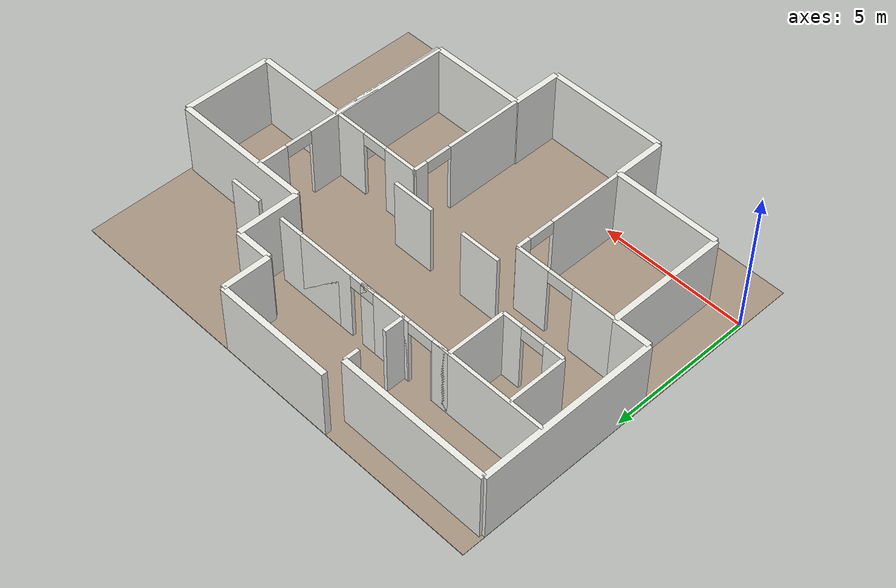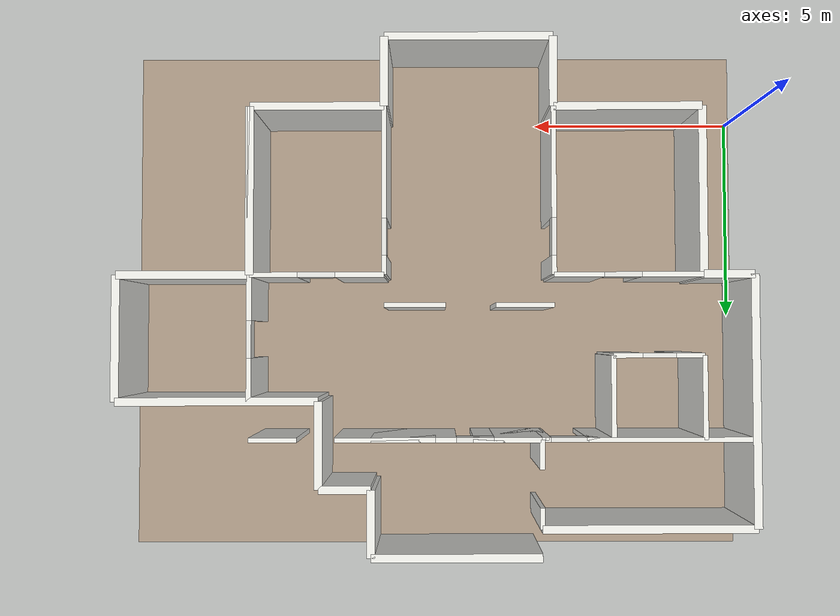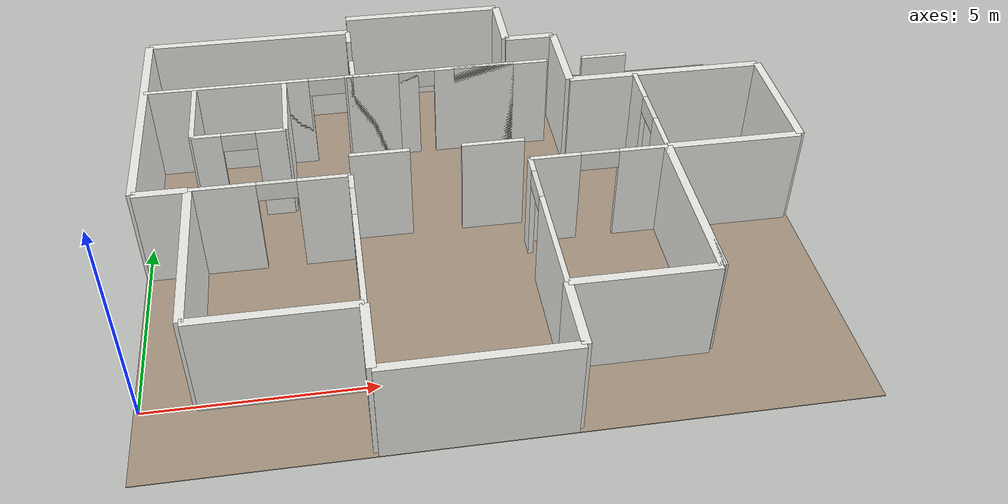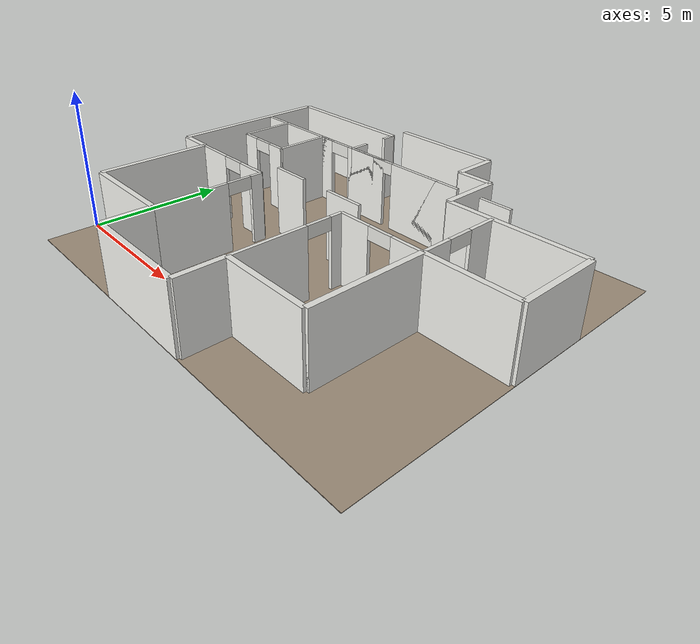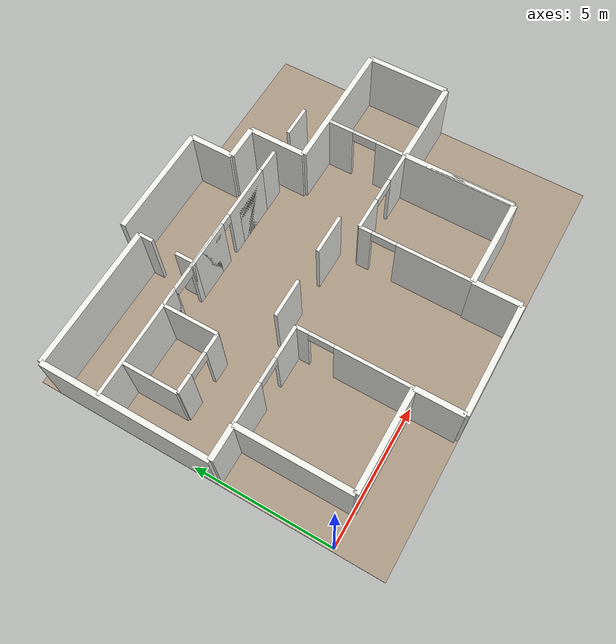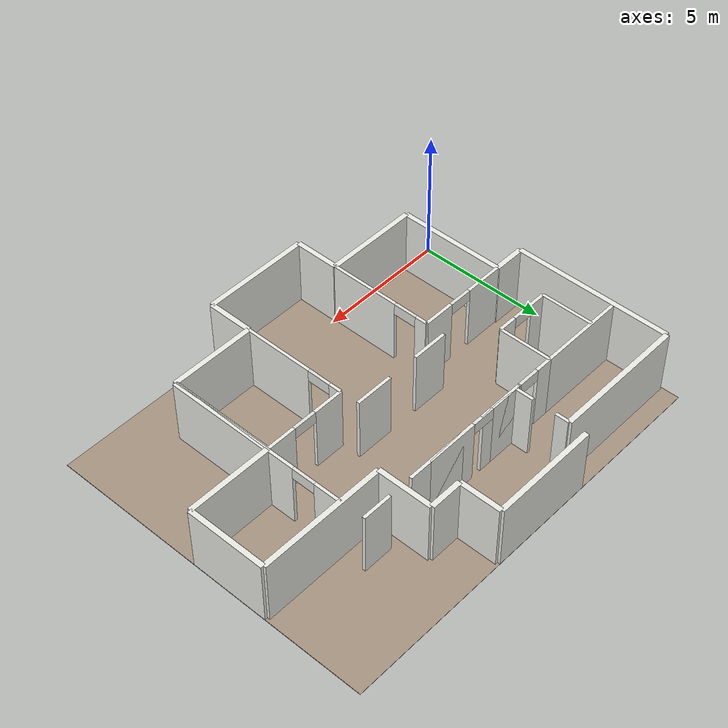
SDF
<sdf version="1.8">
 <world name="semnav_apartment">
  <gravity>0 0 -9.81</gravity>
  <physics name="1ms" type="ode">
   <real_time_update_rate>1000</real_time_update_rate>
   <max_step_size>0.001</max_step_size>
   <real_time_factor>1</real_time_factor>
   <ode>
    <solver>
     <type>quick</type>
     <iters>150</iters>
     <precon_iters>0</precon_iters>
     <sor>1.3999999999999999</sor>
     <use_dynamic_moi_rescaling>true</use_dynamic_moi_rescaling>
    </solver>
    <constraints>
     <cfm>1.0000000000000001e-05</cfm>
     <erp>0.20000000000000001</erp>
     <contact_max_correcting_vel>2000</contact_max_correcting_vel>
     <contact_surface_layer>0.01</contact_surface_layer>
    </constraints>
   </ode>
  </physics>
  <plugin filename="gz-sim-physics-system" name="gz::sim::systems::Physics"/>
  <plugin filename="gz-sim-user-commands-system" name="gz::sim::systems::UserCommands"/>
  <plugin filename="gz-sim-scene-broadcaster-system" name="gz::sim::systems::SceneBroadcaster"/>
  <plugin filename="gz-sim-sensors-system" name="gz::sim::systems::Sensors">
   <render_engine>ogre2</render_engine>
  </plugin>
  <plugin filename="gz-sim-imu-system" name="gz::sim::systems::Imu"/>
  <plugin filename="gz-sim-contact-system" name="gz::sim::systems::Contact"/>
  <scene><ambient>0.45 0.45 0.45</ambient><background>0.72 0.75 0.80</background></scene>
  <light type="directional" name="sun">
   <pose>0 0 8 0 0 0</pose>
   <diffuse>0.85 0.85 0.85 1</diffuse>
   <specular>0.2 0.2 0.2 1</specular>
   <direction>-0.4 0.3 -1</direction>
  </light>
  <light type="point" name="light_room_00">
   <pose>0.610 5.150 2.050 0 0 0</pose>
   <diffuse>0.72 0.72 0.68 1</diffuse>
   <attenuation><range>6.95</range></attenuation>
  </light>
  <light type="point" name="light_room_01">
   <pose>2.555 9.055 2.050 0 0 0</pose>
   <diffuse>0.72 0.72 0.68 1</diffuse>
   <attenuation><range>6.95</range></attenuation>
  </light>
  <light type="point" name="light_room_02">
   <pose>7.145 9.390 2.050 0 0 0</pose>
   <diffuse>0.72 0.72 0.68 1</diffuse>
   <attenuation><range>6.95</range></attenuation>
  </light>
  <light type="point" name="light_room_03">
   <pose>9.810 8.130 2.050 0 0 0</pose>
   <diffuse>0.72 0.72 0.68 1</diffuse>
   <attenuation><range>6.95</range></attenuation>
  </light>
  <light type="point" name="light_room_04">
   <pose>3.010 2.030 2.050 0 0 0</pose>
   <diffuse>0.72 0.72 0.68 1</diffuse>
   <attenuation><range>6.95</range></attenuation>
  </light>
  <light type="point" name="light_room_05">
   <pose>6.835 2.395 2.050 0 0 0</pose>
   <diffuse>0.72 0.72 0.68 1</diffuse>
   <attenuation><range>6.95</range></attenuation>
  </light>
  <light type="point" name="light_room_06">
   <pose>10.485 2.030 2.050 0 0 0</pose>
   <diffuse>0.72 0.72 0.68 1</diffuse>
   <attenuation><range>6.95</range></attenuation>
  </light>
  <light type="point" name="light_room_07">
   <pose>13.695 5.570 2.050 0 0 0</pose>
   <diffuse>0.72 0.72 0.68 1</diffuse>
   <attenuation><range>6.95</range></attenuation>
  </light>
  <light type="point" name="light_room_08">
   <pose>2.310 7.000 2.050 0 0 0</pose>
   <diffuse>0.72 0.72 0.68 1</diffuse>
   <attenuation><range>6.95</range></attenuation>
  </light>
  <light type="point" name="light_room_09">
   <pose>8.450 6.030 2.050 0 0 0</pose>
   <diffuse>0.72 0.72 0.68 1</diffuse>
   <attenuation><range>6.95</range></attenuation>
  </light>
  <light type="point" name="light_room_10">
   <pose>6.835 -0.850 2.050 0 0 0</pose>
   <diffuse>0.72 0.72 0.68 1</diffuse>
   <attenuation><range>6.95</range></attenuation>
  </light>
  <model name="apartment_floor">
   <static>true</static>
   <pose>7.6450 4.5400 -0.01 0 0 0</pose>
   <link name="link">
    <collision name="collision"><geometry><box><size>15.4900 12.6800 0.02</size></box></geometry></collision>
    <visual name="visual">
     <geometry><box><size>15.4900 12.6800 0.02</size></box></geometry>
     <material><ambient>0.55 0.50 0.45 1</ambient><diffuse>0.65 0.58 0.50 1</diffuse></material>
    </visual>
   </link>
  </model>
  <model name="exterior_west_0">
   <static>true</static>
   <pose>0.0000 7.0850 1.2500 0 0 0</pose>
   <link name="link">
    <collision name="collision"><geometry><box><size>0.2000 6.0500 2.5000</size></box></geometry></collision>
    <visual name="visual">
     <geometry><box><size>0.2000 6.0500 2.5000</size></box></geometry>
     <material><ambient>0.85 0.85 0.85 1</ambient><diffuse>0.92 0.92 0.90 1</diffuse></material>
    </visual>
   </link>
  </model>
  <model name="exterior_north_kitchen_1">
   <static>true</static>
   <pose>2.5550 10.1100 1.2500 0 0 0</pose>
   <link name="link">
    <collision name="collision"><geometry><box><size>5.1100 0.2000 2.5000</size></box></geometry></collision>
    <visual name="visual">
     <geometry><box><size>5.1100 0.2000 2.5000</size></box></geometry>
     <material><ambient>0.85 0.85 0.85 1</ambient><diffuse>0.92 0.92 0.90 1</diffuse></material>
    </visual>
   </link>
  </model>
  <model name="exterior_north_dining_2">
   <static>true</static>
   <pose>7.1450 10.7800 1.2500 0 0 0</pose>
   <link name="link">
    <collision name="collision"><geometry><box><size>4.0700 0.2000 2.5000</size></box></geometry></collision>
    <visual name="visual">
     <geometry><box><size>4.0700 0.2000 2.5000</size></box></geometry>
     <material><ambient>0.85 0.85 0.85 1</ambient><diffuse>0.92 0.92 0.90 1</diffuse></material>
    </visual>
   </link>
  </model>
  <model name="exterior_entry_step_3">
   <static>true</static>
   <pose>9.1800 9.9800 1.2500 0 0 0</pose>
   <link name="link">
    <collision name="collision"><geometry><box><size>0.2000 1.6000 2.5000</size></box></geometry></collision>
    <visual name="visual">
     <geometry><box><size>0.2000 1.6000 2.5000</size></box></geometry>
     <material><ambient>0.85 0.85 0.85 1</ambient><diffuse>0.92 0.92 0.90 1</diffuse></material>
    </visual>
   </link>
  </model>
  <model name="exterior_entry_north_4">
   <static>true</static>
   <pose>9.8100 9.1800 1.2500 0 0 0</pose>
   <link name="link">
    <collision name="collision"><geometry><box><size>1.2600 0.2000 2.5000</size></box></geometry></collision>
    <visual name="visual">
     <geometry><box><size>1.2600 0.2000 2.5000</size></box></geometry>
     <material><ambient>0.85 0.85 0.85 1</ambient><diffuse>0.92 0.92 0.90 1</diffuse></material>
    </visual>
   </link>
  </model>
  <model name="exterior_entry_east_5">
   <static>true</static>
   <pose>10.4400 8.1300 1.2500 0 0 0</pose>
   <link name="link">
    <collision name="collision"><geometry><box><size>0.2000 2.1000 2.5000</size></box></geometry></collision>
    <visual name="visual">
     <geometry><box><size>0.2000 2.1000 2.5000</size></box></geometry>
     <material><ambient>0.85 0.85 0.85 1</ambient><diffuse>0.92 0.92 0.90 1</diffuse></material>
    </visual>
   </link>
  </model>
  <model name="exterior_north_third_6">
   <static>true</static>
   <pose>12.8650 7.0800 1.2500 0 0 0</pose>
   <link name="link">
    <collision name="collision"><geometry><box><size>4.8500 0.2000 2.5000</size></box></geometry></collision>
    <visual name="visual">
     <geometry><box><size>4.8500 0.2000 2.5000</size></box></geometry>
     <material><ambient>0.85 0.85 0.85 1</ambient><diffuse>0.92 0.92 0.90 1</diffuse></material>
    </visual>
   </link>
  </model>
  <model name="exterior_east_7">
   <static>true</static>
   <pose>15.2900 5.5700 1.2500 0 0 0</pose>
   <link name="link">
    <collision name="collision"><geometry><box><size>0.2000 3.0200 2.5000</size></box></geometry></collision>
    <visual name="visual">
     <geometry><box><size>0.2000 3.0200 2.5000</size></box></geometry>
     <material><ambient>0.85 0.85 0.85 1</ambient><diffuse>0.92 0.92 0.90 1</diffuse></material>
    </visual>
   </link>
  </model>
  <model name="exterior_south_east_8">
   <static>true</static>
   <pose>13.6950 4.0600 1.2500 0 0 0</pose>
   <link name="link">
    <collision name="collision"><geometry><box><size>3.1900 0.2000 2.5000</size></box></geometry></collision>
    <visual name="visual">
     <geometry><box><size>3.1900 0.2000 2.5000</size></box></geometry>
     <material><ambient>0.85 0.85 0.85 1</ambient><diffuse>0.92 0.92 0.90 1</diffuse></material>
    </visual>
   </link>
  </model>
  <model name="exterior_east_lower_9">
   <static>true</static>
   <pose>12.1000 2.0300 1.2500 0 0 0</pose>
   <link name="link">
    <collision name="collision"><geometry><box><size>0.2000 4.0600 2.5000</size></box></geometry></collision>
    <visual name="visual">
     <geometry><box><size>0.2000 4.0600 2.5000</size></box></geometry>
     <material><ambient>0.85 0.85 0.85 1</ambient><diffuse>0.92 0.92 0.90 1</diffuse></material>
    </visual>
   </link>
  </model>
  <model name="exterior_south_second_10">
   <static>true</static>
   <pose>10.4850 0.0000 1.2500 0 0 0</pose>
   <link name="link">
    <collision name="collision"><geometry><box><size>3.2300 0.2000 2.5000</size></box></geometry></collision>
    <visual name="visual">
     <geometry><box><size>3.2300 0.2000 2.5000</size></box></geometry>
     <material><ambient>0.85 0.85 0.85 1</ambient><diffuse>0.92 0.92 0.90 1</diffuse></material>
    </visual>
   </link>
  </model>
  <model name="exterior_south_balcony_east_11">
   <static>true</static>
   <pose>8.8700 -0.8500 1.2500 0 0 0</pose>
   <link name="link">
    <collision name="collision"><geometry><box><size>0.2000 1.7000 2.5000</size></box></geometry></collision>
    <visual name="visual">
     <geometry><box><size>0.2000 1.7000 2.5000</size></box></geometry>
     <material><ambient>0.85 0.85 0.85 1</ambient><diffuse>0.92 0.92 0.90 1</diffuse></material>
    </visual>
   </link>
  </model>
  <model name="exterior_south_balcony_12">
   <static>true</static>
   <pose>6.8350 -1.7000 1.2500 0 0 0</pose>
   <link name="link">
    <collision name="collision"><geometry><box><size>4.0700 0.2000 2.5000</size></box></geometry></collision>
    <visual name="visual">
     <geometry><box><size>4.0700 0.2000 2.5000</size></box></geometry>
     <material><ambient>0.85 0.85 0.85 1</ambient><diffuse>0.92 0.92 0.90 1</diffuse></material>
    </visual>
   </link>
  </model>
  <model name="exterior_south_balcony_west_13">
   <static>true</static>
   <pose>4.8000 -0.8500 1.2500 0 0 0</pose>
   <link name="link">
    <collision name="collision"><geometry><box><size>0.2000 1.7000 2.5000</size></box></geometry></collision>
    <visual name="visual">
     <geometry><box><size>0.2000 1.7000 2.5000</size></box></geometry>
     <material><ambient>0.85 0.85 0.85 1</ambient><diffuse>0.92 0.92 0.90 1</diffuse></material>
    </visual>
   </link>
  </model>
  <model name="exterior_south_master_14">
   <static>true</static>
   <pose>3.0100 0.0000 1.2500 0 0 0</pose>
   <link name="link">
    <collision name="collision"><geometry><box><size>3.5800 0.2000 2.5000</size></box></geometry></collision>
    <visual name="visual">
     <geometry><box><size>3.5800 0.2000 2.5000</size></box></geometry>
     <material><ambient>0.85 0.85 0.85 1</ambient><diffuse>0.92 0.92 0.90 1</diffuse></material>
    </visual>
   </link>
  </model>
  <model name="exterior_west_master_15">
   <static>true</static>
   <pose>1.2200 2.0300 1.2500 0 0 0</pose>
   <link name="link">
    <collision name="collision"><geometry><box><size>0.2000 4.0600 2.5000</size></box></geometry></collision>
    <visual name="visual">
     <geometry><box><size>0.2000 4.0600 2.5000</size></box></geometry>
     <material><ambient>0.85 0.85 0.85 1</ambient><diffuse>0.92 0.92 0.90 1</diffuse></material>
    </visual>
   </link>
  </model>
  <model name="exterior_west_balcony_16">
   <static>true</static>
   <pose>0.6100 4.0600 1.2500 0 0 0</pose>
   <link name="link">
    <collision name="collision"><geometry><box><size>1.2200 0.2000 2.5000</size></box></geometry></collision>
    <visual name="visual">
     <geometry><box><size>1.2200 0.2000 2.5000</size></box></geometry>
     <material><ambient>0.85 0.85 0.85 1</ambient><diffuse>0.92 0.92 0.90 1</diffuse></material>
    </visual>
   </link>
  </model>
  <model name="interior_master_living_17">
   <static>true</static>
   <pose>4.8000 1.3500 1.2500 0 0 0</pose>
   <link name="link">
    <collision name="collision"><geometry><box><size>0.1200 2.7000 2.5000</size></box></geometry></collision>
    <visual name="visual">
     <geometry><box><size>0.1200 2.7000 2.5000</size></box></geometry>
     <material><ambient>0.85 0.85 0.85 1</ambient><diffuse>0.92 0.92 0.90 1</diffuse></material>
    </visual>
   </link>
  </model>
  <model name="interior_master_living_18">
   <static>true</static>
   <pose>4.8000 3.8300 1.2500 0 0 0</pose>
   <link name="link">
    <collision name="collision"><geometry><box><size>0.1200 0.4600 2.5000</size></box></geometry></collision>
    <visual name="visual">
     <geometry><box><size>0.1200 0.4600 2.5000</size></box></geometry>
     <material><ambient>0.85 0.85 0.85 1</ambient><diffuse>0.92 0.92 0.90 1</diffuse></material>
    </visual>
   </link>
  </model>
  <model name="interior_living_second_19">
   <static>true</static>
   <pose>8.8700 1.3500 1.2500 0 0 0</pose>
   <link name="link">
    <collision name="collision"><geometry><box><size>0.1200 2.7000 2.5000</size></box></geometry></collision>
    <visual name="visual">
     <geometry><box><size>0.1200 2.7000 2.5000</size></box></geometry>
     <material><ambient>0.85 0.85 0.85 1</ambient><diffuse>0.92 0.92 0.90 1</diffuse></material>
    </visual>
   </link>
  </model>
  <model name="interior_living_second_20">
   <static>true</static>
   <pose>8.8700 3.8300 1.2500 0 0 0</pose>
   <link name="link">
    <collision name="collision"><geometry><box><size>0.1200 0.4600 2.5000</size></box></geometry></collision>
    <visual name="visual">
     <geometry><box><size>0.1200 0.4600 2.5000</size></box></geometry>
     <material><ambient>0.85 0.85 0.85 1</ambient><diffuse>0.92 0.92 0.90 1</diffuse></material>
    </visual>
   </link>
  </model>
  <model name="interior_second_third_21">
   <static>true</static>
   <pose>12.1000 2.5750 1.2500 0 0 0</pose>
   <link name="link">
    <collision name="collision"><geometry><box><size>0.1200 5.1500 2.5000</size></box></geometry></collision>
    <visual name="visual">
     <geometry><box><size>0.1200 5.1500 2.5000</size></box></geometry>
     <material><ambient>0.85 0.85 0.85 1</ambient><diffuse>0.92 0.92 0.90 1</diffuse></material>
    </visual>
   </link>
  </model>
  <model name="interior_second_third_22">
   <static>true</static>
   <pose>12.1000 6.5650 1.2500 0 0 0</pose>
   <link name="link">
    <collision name="collision"><geometry><box><size>0.1200 1.0300 2.5000</size></box></geometry></collision>
    <visual name="visual">
     <geometry><box><size>0.1200 1.0300 2.5000</size></box></geometry>
     <material><ambient>0.85 0.85 0.85 1</ambient><diffuse>0.92 0.92 0.90 1</diffuse></material>
    </visual>
   </link>
  </model>
  <model name="interior_master_north_23">
   <static>true</static>
   <pose>1.9600 4.0600 1.2500 0 0 0</pose>
   <link name="link">
    <collision name="collision"><geometry><box><size>1.4800 0.1200 2.5000</size></box></geometry></collision>
    <visual name="visual">
     <geometry><box><size>1.4800 0.1200 2.5000</size></box></geometry>
     <material><ambient>0.85 0.85 0.85 1</ambient><diffuse>0.92 0.92 0.90 1</diffuse></material>
    </visual>
   </link>
  </model>
  <model name="interior_master_north_24">
   <static>true</static>
   <pose>4.2000 4.0600 1.2500 0 0 0</pose>
   <link name="link">
    <collision name="collision"><geometry><box><size>1.2000 0.1200 2.5000</size></box></geometry></collision>
    <visual name="visual">
     <geometry><box><size>1.2000 0.1200 2.5000</size></box></geometry>
     <material><ambient>0.85 0.85 0.85 1</ambient><diffuse>0.92 0.92 0.90 1</diffuse></material>
    </visual>
   </link>
  </model>
  <model name="interior_second_north_25">
   <static>true</static>
   <pose>9.4600 4.0600 1.2500 0 0 0</pose>
   <link name="link">
    <collision name="collision"><geometry><box><size>1.1800 0.1200 2.5000</size></box></geometry></collision>
    <visual name="visual">
     <geometry><box><size>1.1800 0.1200 2.5000</size></box></geometry>
     <material><ambient>0.85 0.85 0.85 1</ambient><diffuse>0.92 0.92 0.90 1</diffuse></material>
    </visual>
   </link>
  </model>
  <model name="interior_second_north_26">
   <static>true</static>
   <pose>11.5250 4.0600 1.2500 0 0 0</pose>
   <link name="link">
    <collision name="collision"><geometry><box><size>1.1500 0.1200 2.5000</size></box></geometry></collision>
    <visual name="visual">
     <geometry><box><size>1.1500 0.1200 2.5000</size></box></geometry>
     <material><ambient>0.85 0.85 0.85 1</ambient><diffuse>0.92 0.92 0.90 1</diffuse></material>
    </visual>
   </link>
  </model>
  <model name="interior_kitchen_south_27">
   <static>true</static>
   <pose>2.0000 8.0000 1.2500 0 0 0</pose>
   <link name="link">
    <collision name="collision"><geometry><box><size>4.0000 0.1200 2.5000</size></box></geometry></collision>
    <visual name="visual">
     <geometry><box><size>4.0000 0.1200 2.5000</size></box></geometry>
     <material><ambient>0.85 0.85 0.85 1</ambient><diffuse>0.92 0.92 0.90 1</diffuse></material>
    </visual>
   </link>
  </model>
  <model name="interior_kitchen_south_28">
   <static>true</static>
   <pose>5.0050 8.0000 1.2500 0 0 0</pose>
   <link name="link">
    <collision name="collision"><geometry><box><size>0.2100 0.1200 2.5000</size></box></geometry></collision>
    <visual name="visual">
     <geometry><box><size>0.2100 0.1200 2.5000</size></box></geometry>
     <material><ambient>0.85 0.85 0.85 1</ambient><diffuse>0.92 0.92 0.90 1</diffuse></material>
    </visual>
   </link>
  </model>
  <model name="interior_dining_south_29">
   <static>true</static>
   <pose>5.6800 8.0000 1.2500 0 0 0</pose>
   <link name="link">
    <collision name="collision"><geometry><box><size>1.1400 0.1200 2.5000</size></box></geometry></collision>
    <visual name="visual">
     <geometry><box><size>1.1400 0.1200 2.5000</size></box></geometry>
     <material><ambient>0.85 0.85 0.85 1</ambient><diffuse>0.92 0.92 0.90 1</diffuse></material>
    </visual>
   </link>
  </model>
  <model name="interior_dining_south_30">
   <static>true</static>
   <pose>8.1650 8.0000 1.2500 0 0 0</pose>
   <link name="link">
    <collision name="collision"><geometry><box><size>2.0300 0.1200 2.5000</size></box></geometry></collision>
    <visual name="visual">
     <geometry><box><size>2.0300 0.1200 2.5000</size></box></geometry>
     <material><ambient>0.85 0.85 0.85 1</ambient><diffuse>0.92 0.92 0.90 1</diffuse></material>
    </visual>
   </link>
  </model>
  <model name="interior_kitchen_dining_31">
   <static>true</static>
   <pose>5.1100 8.3500 1.2500 0 0 0</pose>
   <link name="link">
    <collision name="collision"><geometry><box><size>0.1200 0.7000 2.5000</size></box></geometry></collision>
    <visual name="visual">
     <geometry><box><size>0.1200 0.7000 2.5000</size></box></geometry>
     <material><ambient>0.85 0.85 0.85 1</ambient><diffuse>0.92 0.92 0.90 1</diffuse></material>
    </visual>
   </link>
  </model>
  <model name="interior_kitchen_dining_32">
   <static>true</static>
   <pose>5.1100 9.8550 1.2500 0 0 0</pose>
   <link name="link">
    <collision name="collision"><geometry><box><size>0.1200 0.5100 2.5000</size></box></geometry></collision>
    <visual name="visual">
     <geometry><box><size>0.1200 0.5100 2.5000</size></box></geometry>
     <material><ambient>0.85 0.85 0.85 1</ambient><diffuse>0.92 0.92 0.90 1</diffuse></material>
    </visual>
   </link>
  </model>
  <model name="interior_bath_west_33">
   <static>true</static>
   <pose>1.2200 7.0000 1.2500 0 0 0</pose>
   <link name="link">
    <collision name="collision"><geometry><box><size>0.1200 2.0000 2.5000</size></box></geometry></collision>
    <visual name="visual">
     <geometry><box><size>0.1200 2.0000 2.5000</size></box></geometry>
     <material><ambient>0.85 0.85 0.85 1</ambient><diffuse>0.92 0.92 0.90 1</diffuse></material>
    </visual>
   </link>
  </model>
  <model name="interior_bath_east_34">
   <static>true</static>
   <pose>3.4000 7.0000 1.2500 0 0 0</pose>
   <link name="link">
    <collision name="collision"><geometry><box><size>0.1200 2.0000 2.5000</size></box></geometry></collision>
    <visual name="visual">
     <geometry><box><size>0.1200 2.0000 2.5000</size></box></geometry>
     <material><ambient>0.85 0.85 0.85 1</ambient><diffuse>0.92 0.92 0.90 1</diffuse></material>
    </visual>
   </link>
  </model>
  <model name="interior_bath_south_35">
   <static>true</static>
   <pose>1.5600 6.0000 1.2500 0 0 0</pose>
   <link name="link">
    <collision name="collision"><geometry><box><size>0.6800 0.1200 2.5000</size></box></geometry></collision>
    <visual name="visual">
     <geometry><box><size>0.6800 0.1200 2.5000</size></box></geometry>
     <material><ambient>0.85 0.85 0.85 1</ambient><diffuse>0.92 0.92 0.90 1</diffuse></material>
    </visual>
   </link>
  </model>
  <model name="interior_bath_south_36">
   <static>true</static>
   <pose>3.0500 6.0000 1.2500 0 0 0</pose>
   <link name="link">
    <collision name="collision"><geometry><box><size>0.7000 0.1200 2.5000</size></box></geometry></collision>
    <visual name="visual">
     <geometry><box><size>0.7000 0.1200 2.5000</size></box></geometry>
     <material><ambient>0.85 0.85 0.85 1</ambient><diffuse>0.92 0.92 0.90 1</diffuse></material>
    </visual>
   </link>
  </model>
  <model name="interior_hall_north_37">
   <static>true</static>
   <pose>3.7250 8.0000 1.2500 0 0 0</pose>
   <link name="link">
    <collision name="collision"><geometry><box><size>0.6500 0.1200 2.5000</size></box></geometry></collision>
    <visual name="visual">
     <geometry><box><size>0.6500 0.1200 2.5000</size></box></geometry>
     <material><ambient>0.85 0.85 0.85 1</ambient><diffuse>0.92 0.92 0.90 1</diffuse></material>
    </visual>
   </link>
  </model>
  <model name="interior_hall_north_38">
   <static>true</static>
   <pose>5.8500 8.0000 1.2500 0 0 0</pose>
   <link name="link">
    <collision name="collision"><geometry><box><size>1.8000 0.1200 2.5000</size></box></geometry></collision>
    <visual name="visual">
     <geometry><box><size>1.8000 0.1200 2.5000</size></box></geometry>
     <material><ambient>0.85 0.85 0.85 1</ambient><diffuse>0.92 0.92 0.90 1</diffuse></material>
    </visual>
   </link>
  </model>
  <model name="interior_hall_north_39">
   <static>true</static>
   <pose>8.8500 8.0000 1.2500 0 0 0</pose>
   <link name="link">
    <collision name="collision"><geometry><box><size>2.4000 0.1200 2.5000</size></box></geometry></collision>
    <visual name="visual">
     <geometry><box><size>2.4000 0.1200 2.5000</size></box></geometry>
     <material><ambient>0.85 0.85 0.85 1</ambient><diffuse>0.92 0.92 0.90 1</diffuse></material>
    </visual>
   </link>
  </model>
  <model name="interior_hall_north_40">
   <static>true</static>
   <pose>11.5250 8.0000 1.2500 0 0 0</pose>
   <link name="link">
    <collision name="collision"><geometry><box><size>1.1500 0.1200 2.5000</size></box></geometry></collision>
    <visual name="visual">
     <geometry><box><size>1.1500 0.1200 2.5000</size></box></geometry>
     <material><ambient>0.85 0.85 0.85 1</ambient><diffuse>0.92 0.92 0.90 1</diffuse></material>
    </visual>
   </link>
  </model>
  <model name="interior_living_hall_41">
   <static>true</static>
   <pose>5.5000 4.7900 1.2500 0 0 0</pose>
   <link name="link">
    <collision name="collision"><geometry><box><size>1.4000 0.1200 2.5000</size></box></geometry></collision>
    <visual name="visual">
     <geometry><box><size>1.4000 0.1200 2.5000</size></box></geometry>
     <material><ambient>0.85 0.85 0.85 1</ambient><diffuse>0.92 0.92 0.90 1</diffuse></material>
    </visual>
   </link>
  </model>
  <model name="interior_living_hall_42">
   <static>true</static>
   <pose>8.1350 4.7900 1.2500 0 0 0</pose>
   <link name="link">
    <collision name="collision"><geometry><box><size>1.4700 0.1200 2.5000</size></box></geometry></collision>
    <visual name="visual">
     <geometry><box><size>1.4700 0.1200 2.5000</size></box></geometry>
     <material><ambient>0.85 0.85 0.85 1</ambient><diffuse>0.92 0.92 0.90 1</diffuse></material>
    </visual>
   </link>
  </model>
  <model name="lintel_door_master_living">
   <static>true</static>
   <pose>4.8000 3.1500 2.2750 0 0 0</pose>
   <link name="link">
    <collision name="collision"><geometry><box><size>0.1200 0.9000 0.4500</size></box></geometry></collision>
    <visual name="visual">
     <geometry><box><size>0.1200 0.9000 0.4500</size></box></geometry>
     <material><ambient>0.80 0.80 0.80 1</ambient><diffuse>0.88 0.88 0.86 1</diffuse></material>
    </visual>
   </link>
  </model>
  <model name="lintel_door_living_second">
   <static>true</static>
   <pose>8.8700 3.1500 2.2750 0 0 0</pose>
   <link name="link">
    <collision name="collision"><geometry><box><size>0.1200 0.9000 0.4500</size></box></geometry></collision>
    <visual name="visual">
     <geometry><box><size>0.1200 0.9000 0.4500</size></box></geometry>
     <material><ambient>0.80 0.80 0.80 1</ambient><diffuse>0.88 0.88 0.86 1</diffuse></material>
    </visual>
   </link>
  </model>
  <model name="lintel_door_second_third">
   <static>true</static>
   <pose>12.1000 5.6000 2.2750 0 0 0</pose>
   <link name="link">
    <collision name="collision"><geometry><box><size>0.1200 0.9000 0.4500</size></box></geometry></collision>
    <visual name="visual">
     <geometry><box><size>0.1200 0.9000 0.4500</size></box></geometry>
     <material><ambient>0.80 0.80 0.80 1</ambient><diffuse>0.88 0.88 0.86 1</diffuse></material>
    </visual>
   </link>
  </model>
  <model name="lintel_door_master_hall">
   <static>true</static>
   <pose>3.1500 4.0600 2.2750 0 0 0</pose>
   <link name="link">
    <collision name="collision"><geometry><box><size>0.9000 0.1200 0.4500</size></box></geometry></collision>
    <visual name="visual">
     <geometry><box><size>0.9000 0.1200 0.4500</size></box></geometry>
     <material><ambient>0.80 0.80 0.80 1</ambient><diffuse>0.88 0.88 0.86 1</diffuse></material>
    </visual>
   </link>
  </model>
  <model name="lintel_door_second_hall">
   <static>true</static>
   <pose>10.5000 4.0600 2.2750 0 0 0</pose>
   <link name="link">
    <collision name="collision"><geometry><box><size>0.9000 0.1200 0.4500</size></box></geometry></collision>
    <visual name="visual">
     <geometry><box><size>0.9000 0.1200 0.4500</size></box></geometry>
     <material><ambient>0.80 0.80 0.80 1</ambient><diffuse>0.88 0.88 0.86 1</diffuse></material>
    </visual>
   </link>
  </model>
  <model name="lintel_door_kitchen_hall">
   <static>true</static>
   <pose>4.4500 8.0000 2.2750 0 0 0</pose>
   <link name="link">
    <collision name="collision"><geometry><box><size>0.9000 0.1200 0.4500</size></box></geometry></collision>
    <visual name="visual">
     <geometry><box><size>0.9000 0.1200 0.4500</size></box></geometry>
     <material><ambient>0.80 0.80 0.80 1</ambient><diffuse>0.88 0.88 0.86 1</diffuse></material>
    </visual>
   </link>
  </model>
  <model name="lintel_door_dining_hall">
   <static>true</static>
   <pose>6.7000 8.0000 2.2750 0 0 0</pose>
   <link name="link">
    <collision name="collision"><geometry><box><size>0.9000 0.1200 0.4500</size></box></geometry></collision>
    <visual name="visual">
     <geometry><box><size>0.9000 0.1200 0.4500</size></box></geometry>
     <material><ambient>0.80 0.80 0.80 1</ambient><diffuse>0.88 0.88 0.86 1</diffuse></material>
    </visual>
   </link>
  </model>
  <model name="lintel_door_bath">
   <static>true</static>
   <pose>2.3000 6.0000 2.2750 0 0 0</pose>
   <link name="link">
    <collision name="collision"><geometry><box><size>0.8000 0.1200 0.4500</size></box></geometry></collision>
    <visual name="visual">
     <geometry><box><size>0.8000 0.1200 0.4500</size></box></geometry>
     <material><ambient>0.80 0.80 0.80 1</ambient><diffuse>0.88 0.88 0.86 1</diffuse></material>
    </visual>
   </link>
  </model>
 </world>
</sdf>
